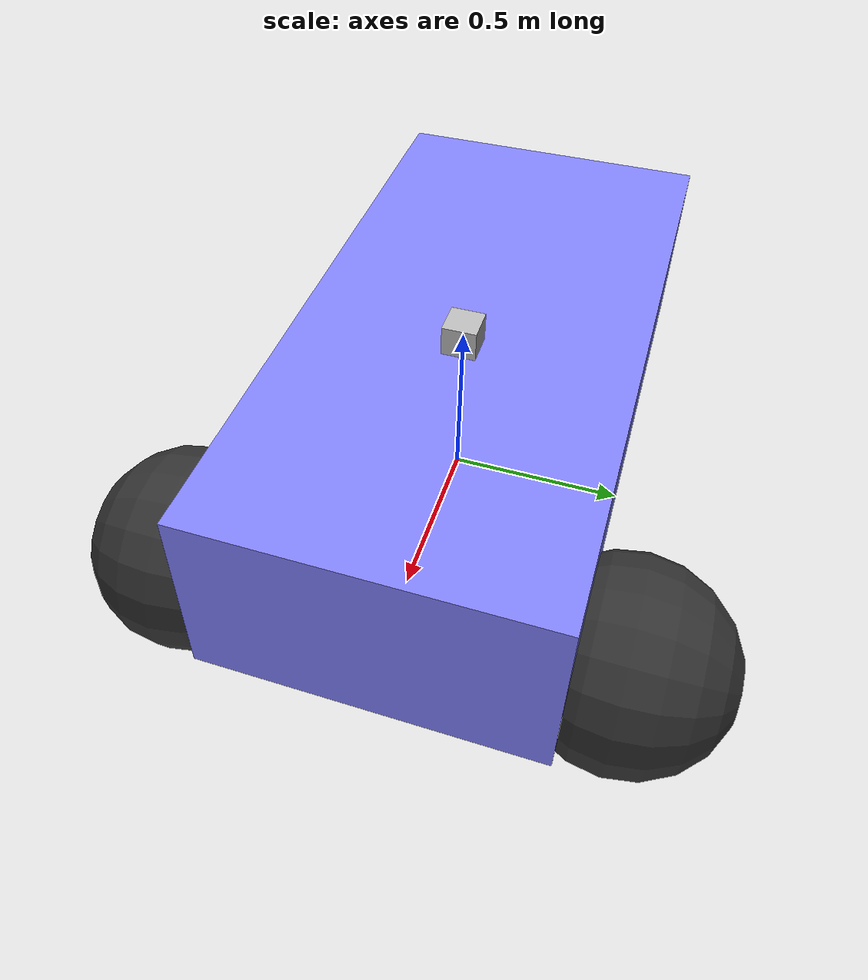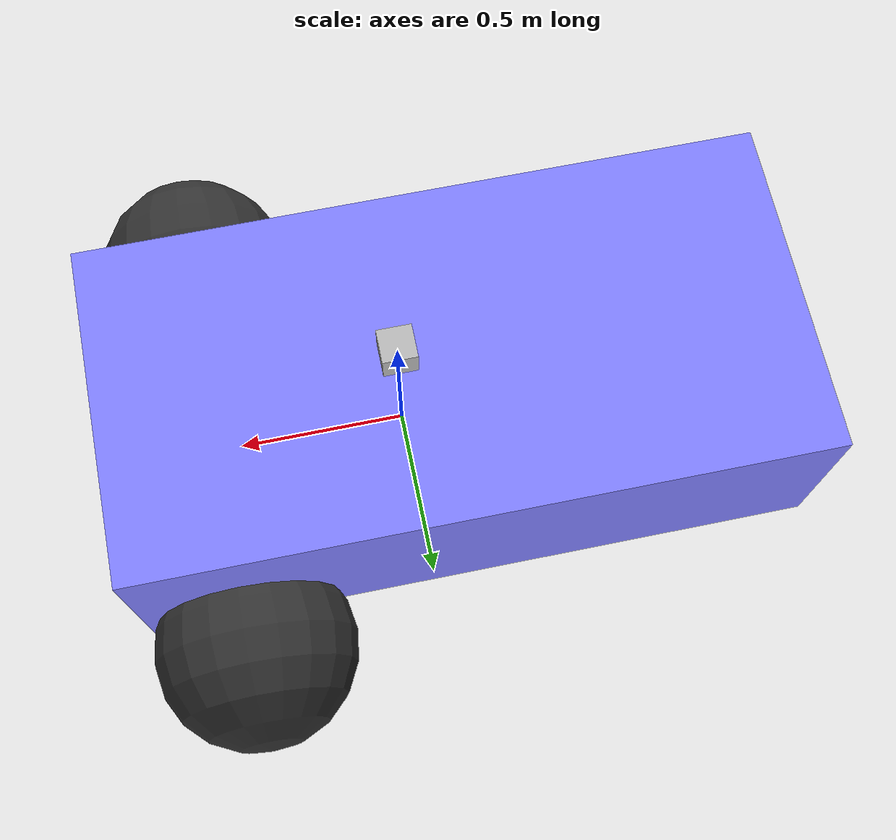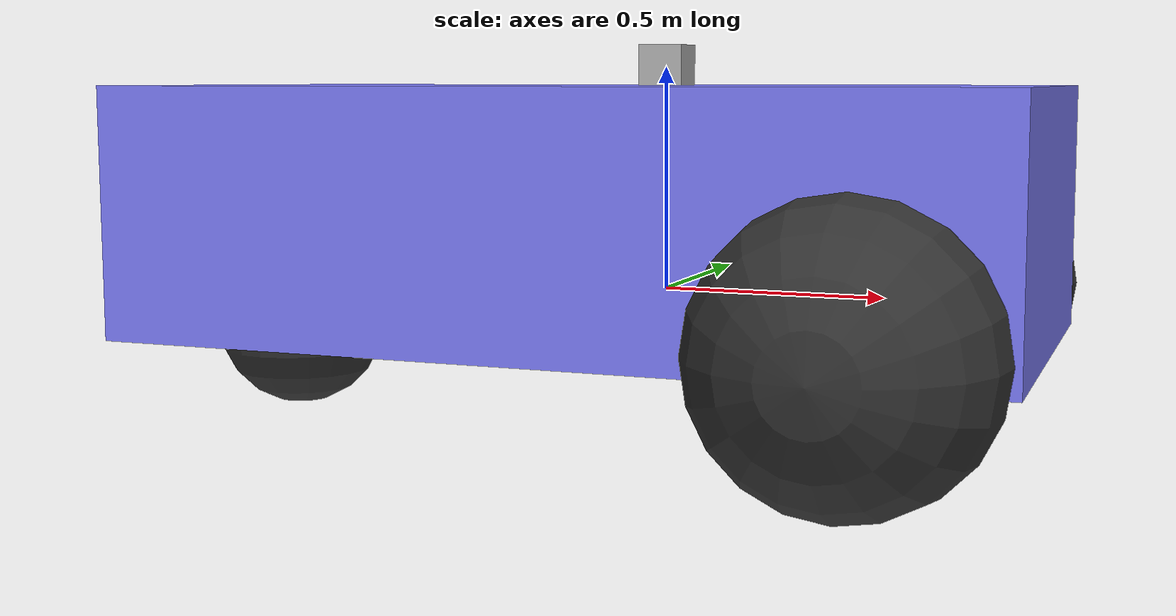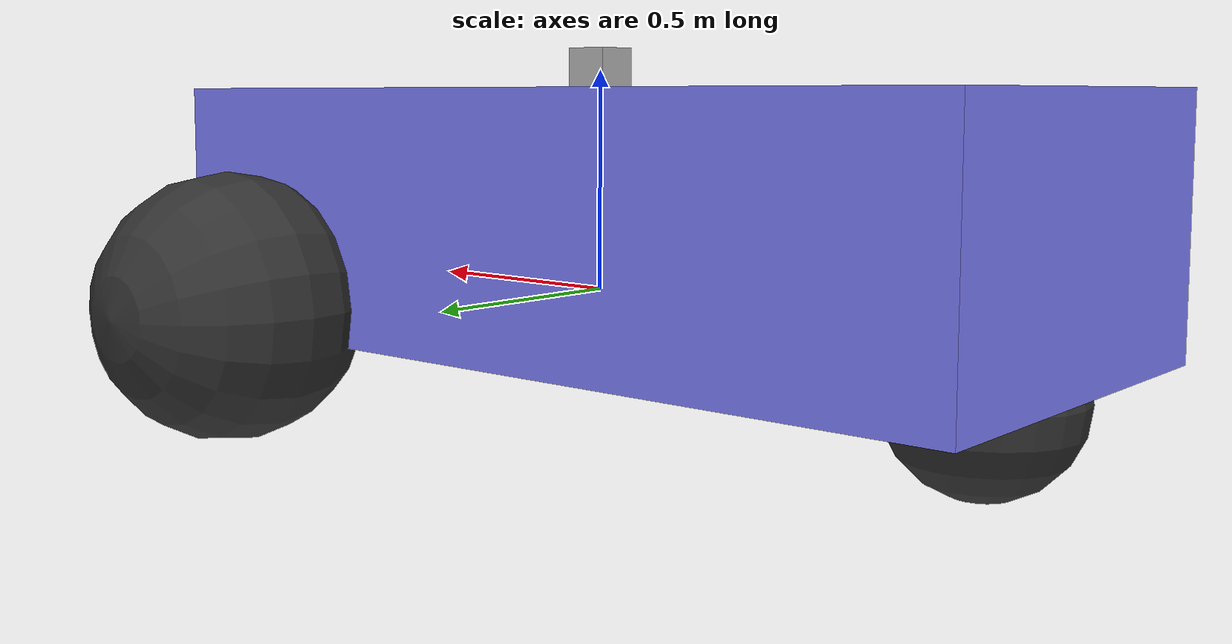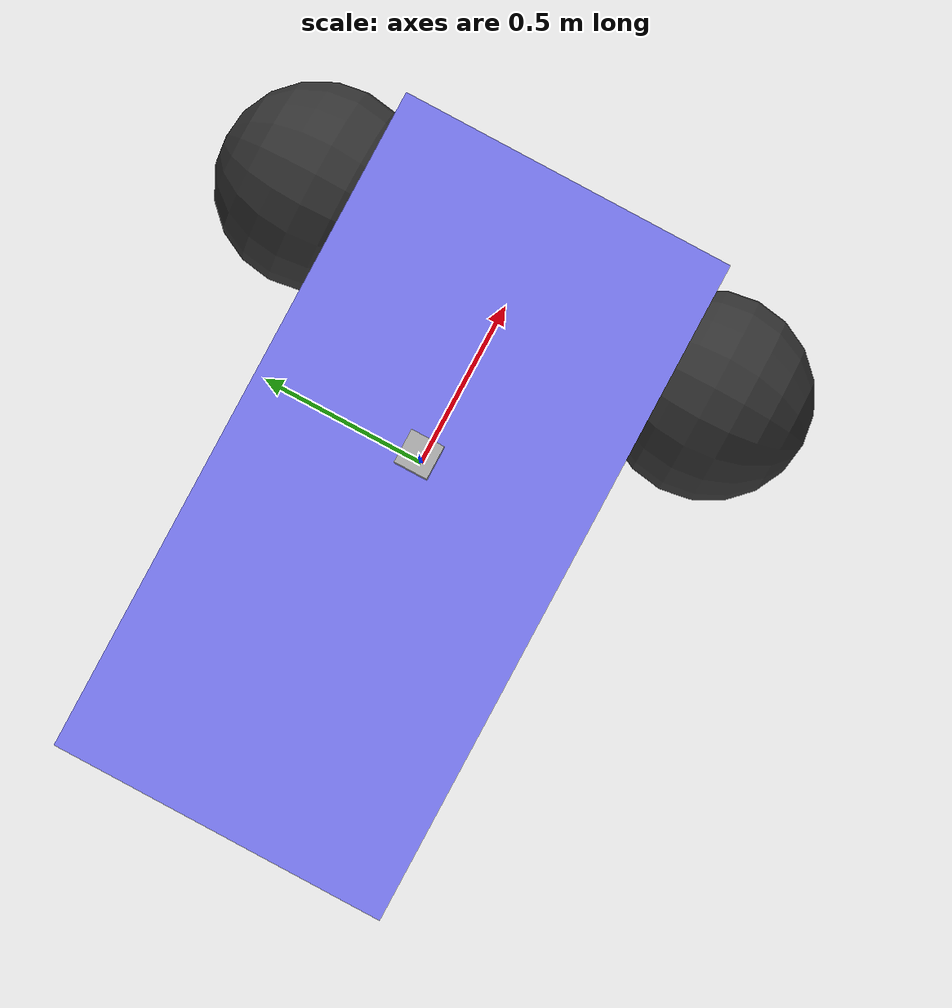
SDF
<?xml version="1.0" ?>
<sdf version="1.8">
    <model name='diff_drive'>
      <link name='chassis'>
        <pose>-0.151427 -0 0.175 0 -0 0</pose>
        <inertial>
          <mass>20</mass>
          <inertia>
            <ixx>2.20</ixx>
            <ixy>0</ixy>
            <ixz>0</ixz>
            <iyy>7.28</iyy>
            <iyz>0</iyz>
            <izz>8.42</izz>
          </inertia>
        </inertial>
        <visual name='visual_chassis'>
          <geometry>
            <box>
              <size>2.01142 1 0.568726</size>
            </box>
          </geometry>
          <material>
            <ambient>0.5 0.5 1.0 1</ambient>
            <diffuse>0.5 0.5 1.0 1</diffuse>
            <specular>0.0 0.0 1.0 1</specular>
          </material>
        </visual>
        <collision name='collision_chassis'>
          <geometry>
            <box>
              <size>2.01142 1 0.568726</size>
            </box>
          </geometry>
        </collision>
      </link>

      <link name='left_wheel'>
        <pose>0.554283 0.625029 -0.025 -1.5707 0 0</pose>
        <inertial>
          <mass>2</mass>
          <inertia>
            <ixx>0.145833</ixx>
            <ixy>0</ixy>
            <ixz>0</ixz>
            <iyy>0.145833</iyy>
            <iyz>0</iyz>
            <izz>0.125</izz>
          </inertia>
        </inertial>
        <visual name='visual_left_wheel'>
          <geometry>
            <sphere>
              <radius>0.3</radius>
            </sphere>
          </geometry>
          <material>
            <ambient>0.2 0.2 0.2 1</ambient>
            <diffuse>0.2 0.2 0.2 1</diffuse>
            <specular>0.2 0.2 0.2 1</specular>
          </material>
        </visual>
        <collision name='collision_left_wheel'>
          <geometry>
            <sphere>
              <radius>0.3</radius>
            </sphere>
          </geometry>
          <surface>
            <friction>
              <ode>
                <mu>1.0</mu>
                <mu2>1.0</mu2>
                <slip1>0.0</slip1>
                <slip2>0.0</slip2>
              </ode>
            </friction>
            <contact>
              <ode>
                <!-- Stiff contact to prevent sinking into ground -->
                <kp>1e6</kp>
                <kd>100</kd>
                <max_vel>0.1</max_vel>
                <min_depth>0.001</min_depth>
              </ode>
            </contact>
          </surface>
        </collision>
      </link>

      <link name='right_wheel'>
        <pose>0.554282 -0.625029 -0.025 -1.5707 0 0</pose>
        <inertial>
          <mass>2</mass>
          <inertia>
            <ixx>0.145833</ixx>
            <ixy>0</ixy>
            <ixz>0</ixz>
            <iyy>0.145833</iyy>
            <iyz>0</iyz>
            <izz>0.125</izz>
          </inertia>
        </inertial>
        <visual name='visual_right_wheel'>
          <geometry>
            <sphere>
              <radius>0.3</radius>
            </sphere>
          </geometry>
          <material>
            <ambient>0.2 0.2 0.2 1</ambient>
            <diffuse>0.2 0.2 0.2 1</diffuse>
            <specular>0.2 0.2 0.2 1</specular>
          </material>
        </visual>
        <collision name='collision_right_wheel'>
          <geometry>
            <sphere>
              <radius>0.3</radius>
            </sphere>
          </geometry>
          <!-- FIX: Same friction as left wheel for symmetry -->
          <surface>
            <friction>
              <ode>
                <mu>1.0</mu>
                <mu2>1.0</mu2>
                <slip1>0.0</slip1>
                <slip2>0.0</slip2>
              </ode>
            </friction>
            <contact>
              <ode>
                <kp>1e6</kp>
                <kd>100</kd>
                <max_vel>0.1</max_vel>
                <min_depth>0.001</min_depth>
              </ode>
            </contact>
          </surface>
        </collision>
      </link>

      <link name='caster'>
        <pose>-0.957138 -0 -0.125 0 -0 0</pose>
        <inertial>
          <mass>1</mass>
          <inertia>
            <ixx>0.1</ixx>
            <ixy>0</ixy>
            <ixz>0</ixz>
            <iyy>0.1</iyy>
            <iyz>0</iyz>
            <izz>0.1</izz>
          </inertia>
        </inertial>
        <visual name='visual_caster'>
          <geometry>
            <sphere>
              <radius>0.2</radius>
            </sphere>
          </geometry>
          <material>
            <ambient>0.2 0.2 0.2 1</ambient>
            <diffuse>0.2 0.2 0.2 1</diffuse>
            <specular>0.2 0.2 0.2 1</specular>
          </material>
        </visual>
        <collision name='collision_caster'>
          <geometry>
            <sphere>
              <radius>0.2</radius>
            </sphere>
          </geometry>
          <surface>
            <friction>
              <ode>
                <mu>0.01</mu>
                <mu2>0.01</mu2>
                <slip1>1.0</slip1>
                <slip2>1.0</slip2>
              </ode>
            </friction>
            <contact>
              <ode>
                <kp>1e6</kp>
                <kd>100</kd>
                <max_vel>0.1</max_vel>
                <min_depth>0.001</min_depth>
              </ode>
            </contact>
          </surface>
        </collision>
      </link>

      <link name="lidar_link">
        <pose>0 0 0.5 0 0 0</pose>
        <inertial>
          <mass>0.1</mass>
          <inertia>
            <ixx>0.000166667</ixx>
            <iyy>0.000166667</iyy>
            <izz>0.000166667</izz>
          </inertia>
        </inertial>
        <collision name="collision">
          <geometry>
            <box>
              <size>0.1 0.1 0.1</size>
            </box>
          </geometry>
        </collision>
        <visual name="visual">
          <geometry>
            <box>
              <size>0.1 0.1 0.1</size>
            </box>
          </geometry>
        </visual>
        <sensor name='gpu_lidar' type='gpu_lidar'>
          <pose>0 0 0 0 0 0</pose>
          <topic>scan</topic>
           <gz_frame_id>diff_drive/lidar_link</gz_frame_id>
          <update_rate>10</update_rate>
          <lidar>
            <scan>
              <horizontal>
                <samples>640</samples>
                <resolution>1</resolution>
                <min_angle>-1.396263</min_angle>
                <max_angle>1.396263</max_angle>
              </horizontal>
              <vertical>
                <samples>1</samples>
                <resolution>1</resolution>
                <min_angle>0.0</min_angle>
                <max_angle>0.0</max_angle>
              </vertical>
            </scan>
            <range>
              <min>0.08</min>
              <max>10.0</max>
              <resolution>0.01</resolution>
            </range>
          </lidar>
          <visualize>true</visualize>
        </sensor>
      </link>

      <joint name='lidar_joint' type='fixed'>
        <parent>chassis</parent>
        <child>lidar_link</child>
      </joint>

      <joint name='left_wheel_joint' type='revolute'>
        <parent>chassis</parent>
        <child>left_wheel</child>
        <axis>
          <xyz>0 0 1</xyz>
          <limit>
            <lower>-1.79769e+308</lower>
            <upper>1.79769e+308</upper>
          </limit>
          <!--
            FIX: Added damping to wheel joints to reduce oscillation.
            Without damping, wheels vibrate freely at contact discontinuities.
          -->
          <dynamics>
            <damping>0.5</damping>
            <friction>0.1</friction>
          </dynamics>
        </axis>
      </joint>

      <joint name='right_wheel_joint' type='revolute'>
        <parent>chassis</parent>
        <child>right_wheel</child>
        <axis>
          <xyz>0 0 1</xyz>
          <limit>
            <lower>-1.79769e+308</lower>
            <upper>1.79769e+308</upper>
          </limit>
          <!-- FIX: Same damping as left wheel -->
          <dynamics>
            <damping>0.5</damping>
            <friction>0.1</friction>
          </dynamics>
        </axis>
      </joint>

      <joint name='caster_wheel' type='ball'>
        <parent>chassis</parent>
        <child>caster</child>
      </joint>

      <plugin
        filename="ignition-gazebo-diff-drive-system"
        name="ignition::gazebo::systems::DiffDrive">
        <left_joint>left_wheel_joint</left_joint>
        <right_joint>right_wheel_joint</right_joint>
        <wheel_separation>1.25</wheel_separation>
        <wheel_radius>0.3</wheel_radius>
        <odom_publish_frequency>20</odom_publish_frequency>
        <max_linear_acceleration>1</max_linear_acceleration>
        <min_linear_acceleration>-1</min_linear_acceleration>
        <max_angular_acceleration>2</max_angular_acceleration>
        <min_angular_acceleration>-2</min_angular_acceleration>
        <max_linear_velocity>0.5</max_linear_velocity>
        <min_linear_velocity>-0.5</min_linear_velocity>
        <max_angular_velocity>1</max_angular_velocity>
        <min_angular_velocity>-1</min_angular_velocity>
      </plugin>
    </model>
</sdf>
